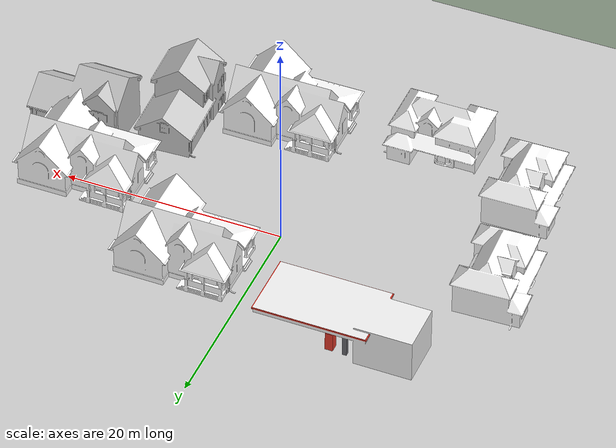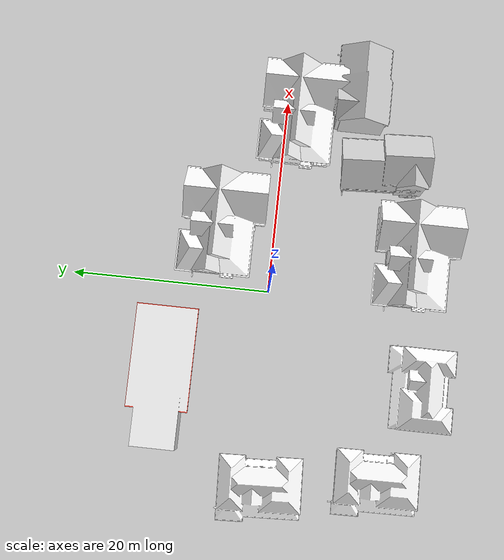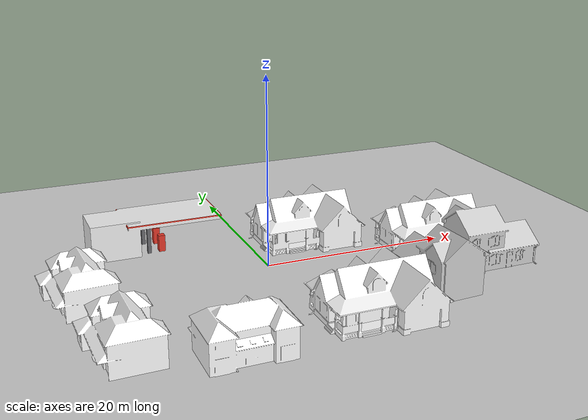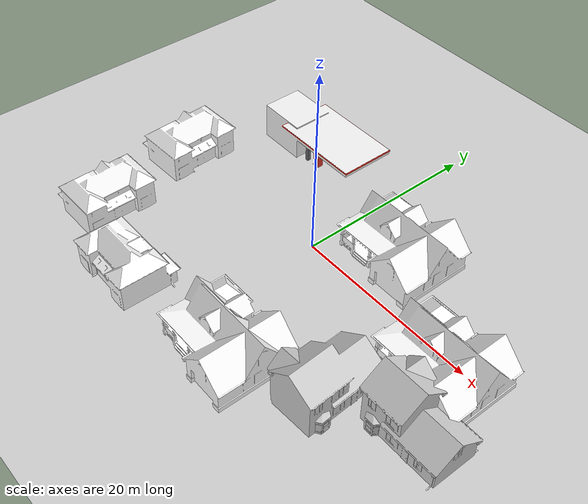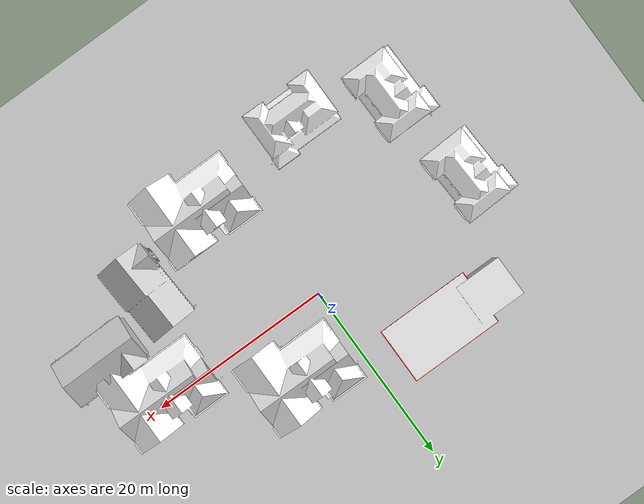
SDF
<sdf version="1.6">
 <world name="default">
  <light name="sun" type="directional">
   <pose>0 0 10 0 -0 0</pose>
   <diffuse>0.8 0.8 0.8 1</diffuse>
   <specular>0.1 0.1 0.1 1</specular>
   <attenuation>
    <range>1000</range>
    <constant>0.9</constant>
    <linear>0.01</linear>
    <quadratic>0.001</quadratic>
   </attenuation>
   <direction>-0.5 0.5 -1</direction>
  </light>
  <model name="ground_plane">
   <static>1</static>
   <link name="link">
    <collision name="collision">
     <geometry><plane><normal>0 0 1</normal><size>100 100</size></plane></geometry>
     <surface><friction><ode><mu>100</mu><mu2>50</mu2></ode></friction></surface>
    </collision>
    <visual name="visual">
     <cast_shadows>0</cast_shadows>
     <geometry><plane><normal>0 0 1</normal><size>100 100</size></plane></geometry>
     <material>
      <script><uri>file://media/materials/scripts/gazebo.material</uri><name>Gazebo/Grey</name></script>
     </material>
    </visual>
   </link>
  </model>
  <gravity>0 0 -9.8</gravity>
  <magnetic_field>6e-06 2.3e-05 -4.2e-05</magnetic_field>
  <atmosphere type="adiabatic"/>
  <physics name="default_physics" default="0" type="ode">
   <max_step_size>0.001</max_step_size>
   <real_time_factor>1</real_time_factor>
   <real_time_update_rate>1000</real_time_update_rate>
  </physics>
  <scene><ambient>0.4 0.4 0.4 1</ambient><background>0.7 0.7 0.7 1</background><shadows>1</shadows></scene>
  <spherical_coordinates>
   <surface_model>EARTH_WGS84</surface_model>
   <latitude_deg>0</latitude_deg>
   <longitude_deg>0</longitude_deg>
   <elevation>0</elevation>
   <heading_deg>0</heading_deg>
  </spherical_coordinates>
  <model name="Gas Station">
   <static>1</static>
   <link name="link">
    <collision name="collision">
     <geometry><mesh><uri>model://gas_station/meshes/gas_station.dae</uri><scale>1 1 1</scale></mesh></geometry>
    </collision>
    <visual name="visual">
     <geometry><mesh><uri>model://gas_station/meshes/gas_station.dae</uri><scale>1 1 1</scale></mesh></geometry>
     <material>
      <script>
       <uri>model://gas_station/materials/scripts</uri>
       <uri>model://gas_station/materials/textures</uri>
       <name>GasStation/Diffuse</name>
      </script>
      <shader type="normal_map_object_space"><normal_map>GasStation_Normal.png</normal_map></shader>
     </material>
    </visual>
   </link>
   <pose>-10.2781 9.68936 0 0 -0 0</pose>
  </model>
  <model name="House 1">
   <static>1</static>
   <link name="link">
    <collision name="collision">
     <geometry><mesh><uri>model://house_1/meshes/house_1.dae</uri><scale>1 1 1</scale></mesh></geometry>
    </collision>
    <visual name="visual">
     <geometry><mesh><uri>model://house_1/meshes/house_1.dae</uri><scale>1 1 1</scale></mesh></geometry>
     <material>
      <script>
       <uri>model://house_1/materials/scripts</uri>
       <uri>model://house_1/materials/textures</uri>
       <name>House_1/Diffuse</name>
      </script>
      <shader type="normal_map_object_space"><normal_map>House_1_Normal.png</normal_map></shader>
     </material>
    </visual>
   </link>
   <pose>6.5224 5.58619 0 0 -0 0</pose>
  </model>
  <model name="House 2">
   <static>1</static>
   <link name="link">
    <collision name="collision">
     <geometry><mesh><uri>model://house_2/meshes/house_2.dae</uri><scale>1 1 1</scale></mesh></geometry>
    </collision>
    <visual name="visual">
     <geometry><mesh><uri>model://house_2/meshes/house_2.dae</uri><scale>1 1 1</scale></mesh></geometry>
     <material>
      <script>
       <uri>model://house_2/materials/scripts</uri>
       <uri>model://house_2/materials/textures</uri>
       <uri>model://house_1/materials/textures</uri>
       <name>House_2/Diffuse</name>
      </script>
      <shader type="normal_map_object_space">
       <normal_map>model://house_1/materials/textures/House_1_Normal.png</normal_map>
      </shader>
     </material>
    </visual>
   </link>
   <pose>-19.0205 -1.71481 0 0 -0 1.61167</pose>
  </model>
  <model name="House 3">
   <static>1</static>
   <link name="link">
    <collision name="collision">
     <geometry><mesh><uri>model://house_3/meshes/house_3.dae</uri><scale>1 1 1</scale></mesh></geometry>
    </collision>
    <visual name="visual">
     <geometry><mesh><uri>model://house_3/meshes/house_3.dae</uri><scale>1 1 1</scale></mesh></geometry>
     <material>
      <script>
       <uri>model://house_3/materials/scripts</uri>
       <uri>model://house_3/materials/textures</uri>
       <uri>model://house_1/materials/textures</uri>
       <name>House_3/Diffuse</name>
      </script>
      <shader type="normal_map_object_space">
       <normal_map>model://house_1/materials/textures/House_1_Normal.png</normal_map>
      </shader>
     </material>
    </visual>
   </link>
   <pose>22.1951 -7.54899 0 0 -0 0</pose>
  </model>
  <model name="House 1_0">
   <static>1</static>
   <link name="link">
    <collision name="collision">
     <geometry><mesh><uri>model://house_1/meshes/house_1.dae</uri><scale>1 1 1</scale></mesh></geometry>
    </collision>
    <visual name="visual">
     <geometry><mesh><uri>model://house_1/meshes/house_1.dae</uri><scale>1 1 1</scale></mesh></geometry>
     <material>
      <script>
       <uri>model://house_1/materials/scripts</uri>
       <uri>model://house_1/materials/textures</uri>
       <name>House_1/Diffuse</name>
      </script>
      <shader type="normal_map_object_space"><normal_map>House_1_Normal.png</normal_map></shader>
     </material>
    </visual>
   </link>
   <pose>5.12325 -14.2749 0 0 -0 0</pose>
  </model>
  <model name="House 1_1">
   <static>1</static>
   <link name="link">
    <collision name="collision">
     <geometry><mesh><uri>model://house_1/meshes/house_1.dae</uri><scale>1 1 1</scale></mesh></geometry>
    </collision>
    <visual name="visual">
     <geometry><mesh><uri>model://house_1/meshes/house_1.dae</uri><scale>1 1 1</scale></mesh></geometry>
     <material>
      <script>
       <uri>model://house_1/materials/scripts</uri>
       <uri>model://house_1/materials/textures</uri>
       <name>House_1/Diffuse</name>
      </script>
      <shader type="normal_map_object_space"><normal_map>House_1_Normal.png</normal_map></shader>
     </material>
    </visual>
   </link>
   <pose>18.7943 -1.33772 0 0 -0 0</pose>
  </model>
  <model name="House 2_0">
   <static>1</static>
   <link name="link">
    <collision name="collision">
     <geometry><mesh><uri>model://house_2/meshes/house_2.dae</uri><scale>1 1 1</scale></mesh></geometry>
    </collision>
    <visual name="visual">
     <geometry><mesh><uri>model://house_2/meshes/house_2.dae</uri><scale>1 1 1</scale></mesh></geometry>
     <material>
      <script>
       <uri>model://house_2/materials/scripts</uri>
       <uri>model://house_2/materials/textures</uri>
       <uri>model://house_1/materials/textures</uri>
       <name>House_2/Diffuse</name>
      </script>
      <shader type="normal_map_object_space">
       <normal_map>model://house_1/materials/textures/House_1_Normal.png</normal_map>
      </shader>
     </material>
    </visual>
   </link>
   <pose>-17.3802 -12.9639 0 0 -0 1.5868</pose>
  </model>
  <model name="House 3_0">
   <static>1</static>
   <link name="link">
    <collision name="collision">
     <geometry><mesh><uri>model://house_3/meshes/house_3.dae</uri><scale>1 1 1</scale></mesh></geometry>
    </collision>
    <visual name="visual">
     <geometry><mesh><uri>model://house_3/meshes/house_3.dae</uri><scale>1 1 1</scale></mesh></geometry>
     <material>
      <script>
       <uri>model://house_3/materials/scripts</uri>
       <uri>model://house_3/materials/textures</uri>
       <uri>model://house_1/materials/textures</uri>
       <name>House_3/Diffuse</name>
      </script>
      <shader type="normal_map_object_space">
       <normal_map>model://house_1/materials/textures/House_1_Normal.png</normal_map>
      </shader>
     </material>
    </visual>
   </link>
   <pose>13.9291 -10.0585 0 0 -0 1.62332</pose>
  </model>
  <model name="House 2_1">
   <static>1</static>
   <link name="link">
    <collision name="collision">
     <geometry><mesh><uri>model://house_2/meshes/house_2.dae</uri><scale>1 1 1</scale></mesh></geometry>
    </collision>
    <visual name="visual">
     <geometry><mesh><uri>model://house_2/meshes/house_2.dae</uri><scale>1 1 1</scale></mesh></geometry>
     <material>
      <script>
       <uri>model://house_2/materials/scripts</uri>
       <uri>model://house_2/materials/textures</uri>
       <uri>model://house_1/materials/textures</uri>
       <name>House_2/Diffuse</name>
      </script>
      <shader type="normal_map_object_space">
       <normal_map>model://house_1/materials/textures/House_1_Normal.png</normal_map>
      </shader>
     </material>
    </visual>
   </link>
   <pose>-8.97444 -16.3635 0 0 -0 0</pose>
  </model>
 </world>
</sdf>
